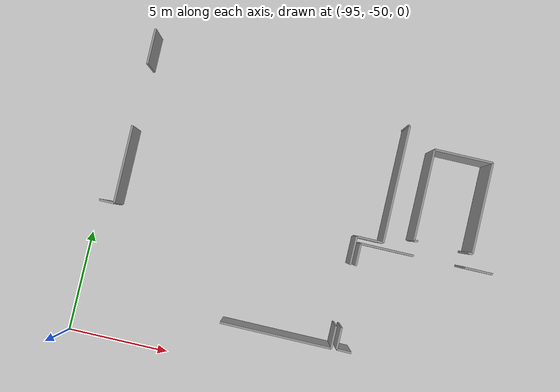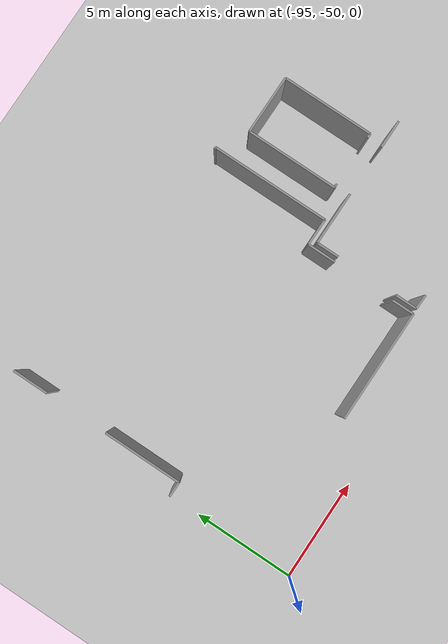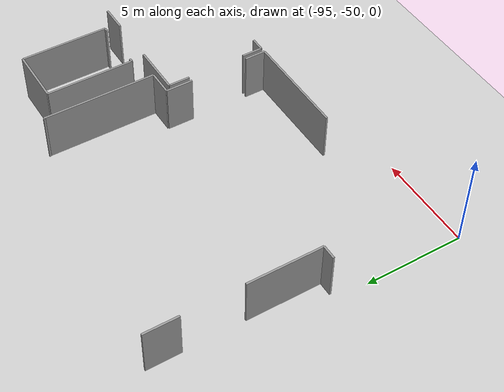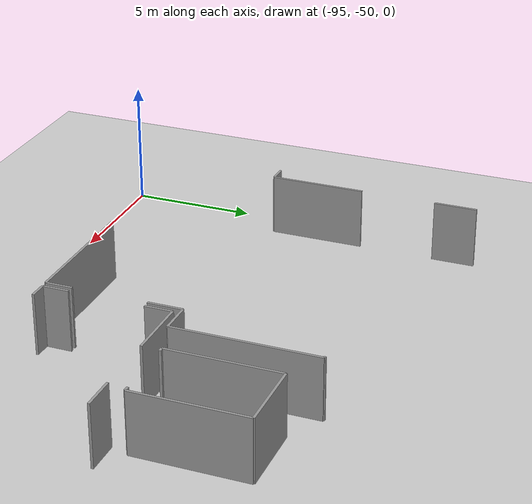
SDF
<sdf version="1.6">
 <world name="default">
  <model name="ground_plane">
   <static>1</static>
   <link name="link">
    <collision name="collision">
     <geometry><plane><normal>0 0 1</normal><size>100 100</size></plane></geometry>
     <surface><friction><ode><mu>100</mu><mu2>50</mu2></ode></friction></surface>
    </collision>
    <visual name="visual">
     <cast_shadows>0</cast_shadows>
     <geometry><plane><normal>0 0 1</normal><size>100 100</size></plane></geometry>
     <material>
      <script><uri>file://media/materials/scripts/gazebo.material</uri><name>Gazebo/Grey</name></script>
     </material>
    </visual>
   </link>
  </model>
  <model name="0510035517_A_40_1_105">
   <static>1</static>
   <link name="Wall_524">
    <collision name="Wall_524_Collision">
     <geometry><box><size>0.722822668268 0.1 2.5</size></box></geometry>
     <pose>0.361411334134 0 1.25 0 0 0</pose>
    </collision>
    <visual name="Wall_524_Visual">
     <pose>0.361411334134 0 1.25 0 0 0</pose>
     <geometry><box><size>0.722822668268 0.1 2.5</size></box></geometry>
     <material>
      <script><uri>file://media/materials/scripts/gazebo.material</uri><name>Gazebo/Grey</name></script>
      <ambient>1 1 1 1</ambient>
     </material>
    </visual>
    <pose>0.0 -107.104070961 0 0 0 0.0</pose>
   </link>
   <link name="Wall_525">
    <collision name="Wall_525_Collision">
     <geometry><box><size>3.81337247352 0.1 2.5</size></box></geometry>
     <pose>1.90668623676 0 1.25 0 0 0</pose>
    </collision>
    <visual name="Wall_525_Visual">
     <pose>1.90668623676 0 1.25 0 0 0</pose>
     <geometry><box><size>3.81337247352 0.1 2.5</size></box></geometry>
     <material>
      <script><uri>file://media/materials/scripts/gazebo.material</uri><name>Gazebo/Grey</name></script>
      <ambient>1 1 1 1</ambient>
     </material>
    </visual>
    <pose>0.722822668268 -107.104070961 0 0 0 1.57079632679</pose>
   </link>
   <link name="Wall_526">
    <collision name="Wall_526_Collision">
     <geometry><box><size>1.74122999307 0.1 2.5</size></box></geometry>
     <pose>0.870614996537 0 1.25 0 0 0</pose>
    </collision>
    <visual name="Wall_526_Visual">
     <pose>0.870614996537 0 1.25 0 0 0</pose>
     <geometry><box><size>1.74122999307 0.1 2.5</size></box></geometry>
     <material>
      <script><uri>file://media/materials/scripts/gazebo.material</uri><name>Gazebo/Grey</name></script>
      <ambient>1 1 1 1</ambient>
     </material>
    </visual>
    <pose>0.722822668268 -100.238526397 0 0 0 1.57079632679</pose>
   </link>
   <link name="Wall_532">
    <collision name="Wall_532_Collision">
     <geometry><box><size>0.0808219439202 0.1 2.5</size></box></geometry>
     <pose>0.0404109719601 0 1.25 0 0 0</pose>
    </collision>
    <visual name="Wall_532_Visual">
     <pose>0.0404109719601 0 1.25 0 0 0</pose>
     <geometry><box><size>0.0808219439202 0.1 2.5</size></box></geometry>
     <material>
      <script><uri>file://media/materials/scripts/gazebo.material</uri><name>Gazebo/Grey</name></script>
      <ambient>1 1 1 1</ambient>
     </material>
    </visual>
    <pose>13.5864737615 -100.307911274 0 0 0 0.0</pose>
   </link>
   <link name="Wall_533">
    <collision name="Wall_533_Collision">
     <geometry><box><size>5.73200409193 0.1 2.5</size></box></geometry>
     <pose>2.86600204596 0 1.25 0 0 0</pose>
    </collision>
    <visual name="Wall_533_Visual">
     <pose>2.86600204596 0 1.25 0 0 0</pose>
     <geometry><box><size>5.73200409193 0.1 2.5</size></box></geometry>
     <material>
      <script><uri>file://media/materials/scripts/gazebo.material</uri><name>Gazebo/Grey</name></script>
      <ambient>1 1 1 1</ambient>
     </material>
    </visual>
    <pose>13.6672957054 -100.307911274 0 0 0 -1.57079632679</pose>
   </link>
   <link name="Wall_534">
    <collision name="Wall_534_Collision">
     <geometry><box><size>1.29569267329 0.1 2.5</size></box></geometry>
     <pose>0.647846336644 0 1.25 0 0 0</pose>
    </collision>
    <visual name="Wall_534_Visual">
     <pose>0.647846336644 0 1.25 0 0 0</pose>
     <geometry><box><size>1.29569267329 0.1 2.5</size></box></geometry>
     <material>
      <script><uri>file://media/materials/scripts/gazebo.material</uri><name>Gazebo/Grey</name></script>
      <ambient>1 1 1 1</ambient>
     </material>
    </visual>
    <pose>13.6672957054 -106.039915366 0 0 0 3.14159265359</pose>
   </link>
   <link name="Wall_535">
    <collision name="Wall_535_Collision">
     <geometry><box><size>1.37727708838 0.1 2.5</size></box></geometry>
     <pose>0.688638544188 0 1.25 0 0 0</pose>
    </collision>
    <visual name="Wall_535_Visual">
     <pose>0.688638544188 0 1.25 0 0 0</pose>
     <geometry><box><size>1.37727708838 0.1 2.5</size></box></geometry>
     <material>
      <script><uri>file://media/materials/scripts/gazebo.material</uri><name>Gazebo/Grey</name></script>
      <ambient>1 1 1 1</ambient>
     </material>
    </visual>
    <pose>12.3716030321 -106.039915366 0 0 0 -1.57079632679</pose>
   </link>
   <link name="Wall_536">
    <collision name="Wall_536_Collision">
     <geometry><box><size>1.07660929071 0.1 2.5</size></box></geometry>
     <pose>0.538304645356 0 1.25 0 0 0</pose>
    </collision>
    <visual name="Wall_536_Visual">
     <pose>0.538304645356 0 1.25 0 0 0</pose>
     <geometry><box><size>1.07660929071 0.1 2.5</size></box></geometry>
     <material>
      <script><uri>file://media/materials/scripts/gazebo.material</uri><name>Gazebo/Grey</name></script>
      <ambient>1 1 1 1</ambient>
     </material>
    </visual>
    <pose>12.3716030321 -110.410908421 0 0 0 -1.57079632679</pose>
   </link>
   <link name="Wall_537">
    <collision name="Wall_537_Collision">
     <geometry><box><size>5.41862844145 0.1 2.5</size></box></geometry>
     <pose>2.70931422072 0 1.25 0 0 0</pose>
    </collision>
    <visual name="Wall_537_Visual">
     <pose>2.70931422072 0 1.25 0 0 0</pose>
     <geometry><box><size>5.41862844145 0.1 2.5</size></box></geometry>
     <material>
      <script><uri>file://media/materials/scripts/gazebo.material</uri><name>Gazebo/Grey</name></script>
      <ambient>1 1 1 1</ambient>
     </material>
    </visual>
    <pose>12.3716030321 -111.487517712 0 0 0 3.14159265359</pose>
   </link>
   <link name="Wall_566">
    <collision name="Wall_566_Collision">
     <geometry><box><size>4.47595991943 0.1 2.5</size></box></geometry>
     <pose>2.23797995972 0 1.25 0 0 0</pose>
    </collision>
    <visual name="Wall_566_Visual">
     <pose>2.23797995972 0 1.25 0 0 0</pose>
     <geometry><box><size>4.47595991943 0.1 2.5</size></box></geometry>
     <material>
      <script><uri>file://media/materials/scripts/gazebo.material</uri><name>Gazebo/Grey</name></script>
      <ambient>1 1 1 1</ambient>
     </material>
    </visual>
    <pose>15.0796464675 -105.616998024 0 0 0 1.57079632679</pose>
   </link>
   <link name="Wall_567">
    <collision name="Wall_567_Collision">
     <geometry><box><size>2.84808397349 0.1 2.5</size></box></geometry>
     <pose>1.42404198675 0 1.25 0 0 0</pose>
    </collision>
    <visual name="Wall_567_Visual">
     <pose>1.42404198675 0 1.25 0 0 0</pose>
     <geometry><box><size>2.84808397349 0.1 2.5</size></box></geometry>
     <material>
      <script><uri>file://media/materials/scripts/gazebo.material</uri><name>Gazebo/Grey</name></script>
      <ambient>1 1 1 1</ambient>
     </material>
    </visual>
    <pose>15.0796464675 -101.141038104 0 0 0 0.0</pose>
   </link>
   <link name="Wall_568">
    <collision name="Wall_568_Collision">
     <geometry><box><size>4.45562735492 0.1 2.5</size></box></geometry>
     <pose>2.22781367746 0 1.25 0 0 0</pose>
    </collision>
    <visual name="Wall_568_Visual">
     <pose>2.22781367746 0 1.25 0 0 0</pose>
     <geometry><box><size>4.45562735492 0.1 2.5</size></box></geometry>
     <material>
      <script><uri>file://media/materials/scripts/gazebo.material</uri><name>Gazebo/Grey</name></script>
      <ambient>1 1 1 1</ambient>
     </material>
    </visual>
    <pose>17.927730441 -101.141038104 0 0 0 -1.57079632679</pose>
   </link>
   <link name="Wall_569">
    <collision name="Wall_569_Collision">
     <geometry><box><size>0.202563173913 0.1 2.5</size></box></geometry>
     <pose>0.101281586957 0 1.25 0 0 0</pose>
    </collision>
    <visual name="Wall_569_Visual">
     <pose>0.101281586957 0 1.25 0 0 0</pose>
     <geometry><box><size>0.202563173913 0.1 2.5</size></box></geometry>
     <material>
      <script><uri>file://media/materials/scripts/gazebo.material</uri><name>Gazebo/Grey</name></script>
      <ambient>1 1 1 1</ambient>
     </material>
    </visual>
    <pose>17.927730441 -105.596665459 0 0 0 3.14159265359</pose>
   </link>
   <link name="Wall_570">
    <collision name="Wall_570_Collision">
     <geometry><box><size>0.185382268407 0.1 2.5</size></box></geometry>
     <pose>0.0926911342034 0 1.25 0 0 0</pose>
    </collision>
    <visual name="Wall_570_Visual">
     <pose>0.0926911342034 0 1.25 0 0 0</pose>
     <geometry><box><size>0.185382268407 0.1 2.5</size></box></geometry>
     <material>
      <script><uri>file://media/materials/scripts/gazebo.material</uri><name>Gazebo/Grey</name></script>
      <ambient>1 1 1 1</ambient>
     </material>
    </visual>
    <pose>15.2639103334 -105.596665459 0 0 0 -3.03169243454</pose>
   </link>
   <link name="Wall_592">
    <collision name="Wall_592_Collision">
     <geometry><box><size>1.04916032863 0.1 2.5</size></box></geometry>
     <pose>0.524580164313 0 1.25 0 0 0</pose>
    </collision>
    <visual name="Wall_592_Visual">
     <pose>0.524580164313 0 1.25 0 0 0</pose>
     <geometry><box><size>1.04916032863 0.1 2.5</size></box></geometry>
     <material>
      <script><uri>file://media/materials/scripts/gazebo.material</uri><name>Gazebo/Grey</name></script>
      <ambient>1 1 1 1</ambient>
     </material>
    </visual>
    <pose>12.6379596272 -111.462864477 0 0 0 1.57079632679</pose>
   </link>
   <link name="Wall_593">
    <collision name="Wall_593_Collision">
     <geometry><box><size>1.08779220119 0.1 2.5</size></box></geometry>
     <pose>0.543896100595 0 1.25 0 0 0</pose>
    </collision>
    <visual name="Wall_593_Visual">
     <pose>0.543896100595 0 1.25 0 0 0</pose>
     <geometry><box><size>1.08779220119 0.1 2.5</size></box></geometry>
     <material>
      <script><uri>file://media/materials/scripts/gazebo.material</uri><name>Gazebo/Grey</name></script>
      <ambient>1 1 1 1</ambient>
     </material>
    </visual>
    <pose>12.6379596272 -107.410330214 0 0 0 1.57079632679</pose>
   </link>
   <link name="Wall_594">
    <collision name="Wall_594_Collision">
     <geometry><box><size>2.5725777244 0.1 2.5</size></box></geometry>
     <pose>1.2862888622 0 1.25 0 0 0</pose>
    </collision>
    <visual name="Wall_594_Visual">
     <pose>1.2862888622 0 1.25 0 0 0</pose>
     <geometry><box><size>2.5725777244 0.1 2.5</size></box></geometry>
     <material>
      <script><uri>file://media/materials/scripts/gazebo.material</uri><name>Gazebo/Grey</name></script>
      <ambient>1 1 1 1</ambient>
     </material>
    </visual>
    <pose>12.6379596272 -106.322538012 0 0 0 0.0</pose>
   </link>
   <link name="Wall_595">
    <collision name="Wall_595_Collision">
     <geometry><box><size>1.36253597911 0.1 2.5</size></box></geometry>
     <pose>0.681267989554 0 1.25 0 0 0</pose>
    </collision>
    <visual name="Wall_595_Visual">
     <pose>0.681267989554 0 1.25 0 0 0</pose>
     <geometry><box><size>1.36253597911 0.1 2.5</size></box></geometry>
     <material>
      <script><uri>file://media/materials/scripts/gazebo.material</uri><name>Gazebo/Grey</name></script>
      <ambient>1 1 1 1</ambient>
     </material>
    </visual>
    <pose>17.7134760425 -106.322538012 0 0 0 0.0</pose>
   </link>
   <link name="Wall_603">
    <collision name="Wall_603_Collision">
     <geometry><box><size>0.705382724964 0.1 2.5</size></box></geometry>
     <pose>0.352691362482 0 1.25 0 0 0</pose>
    </collision>
    <visual name="Wall_603_Visual">
     <pose>0.352691362482 0 1.25 0 0 0</pose>
     <geometry><box><size>0.705382724964 0.1 2.5</size></box></geometry>
     <material>
      <script><uri>file://media/materials/scripts/gazebo.material</uri><name>Gazebo/Grey</name></script>
      <ambient>1 1 1 1</ambient>
     </material>
    </visual>
    <pose>13.3432454585 -111.474555702 0 0 0 3.12501759508</pose>
   </link>
   <pose>-94.6 63.7835382475 0 0 0 0</pose>
  </model>
 </world>
</sdf>
